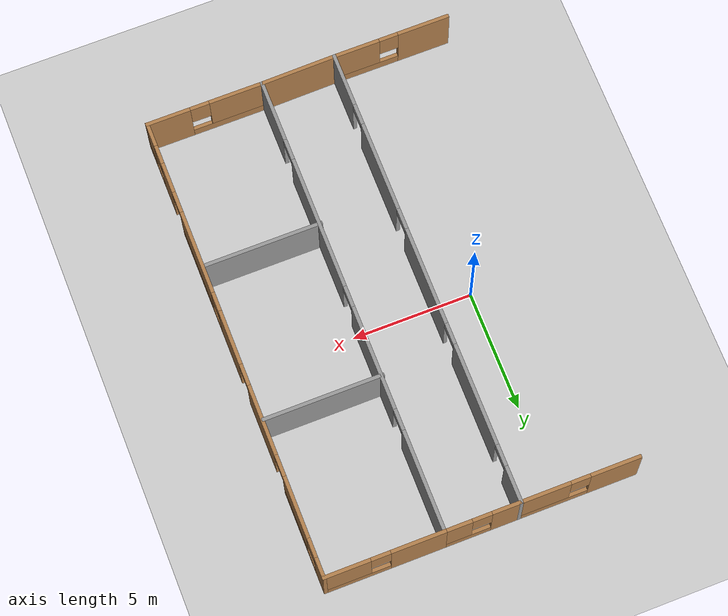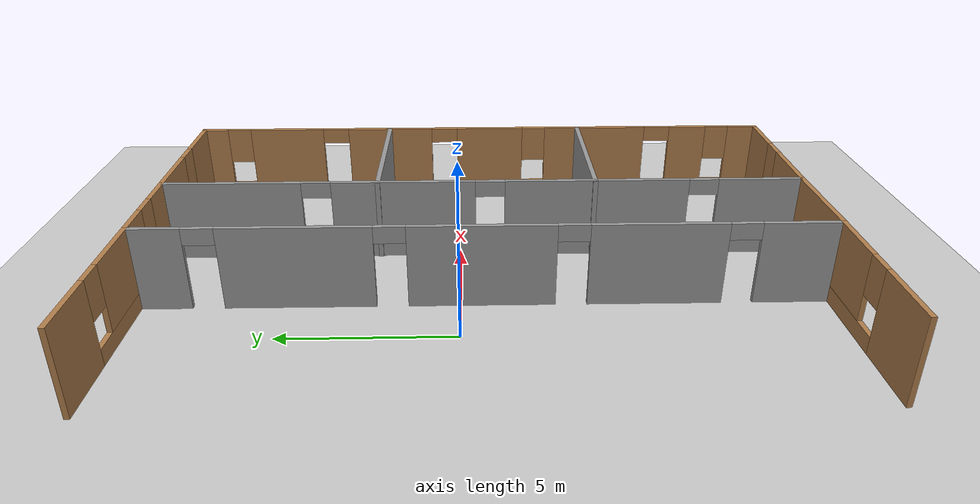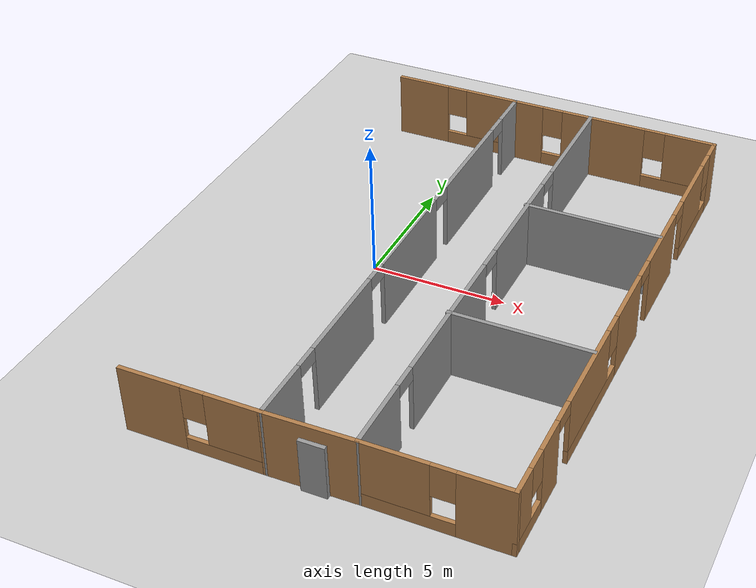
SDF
<sdf version="1.7">
 <world name="hospital_world">
  <model name="ground_plane">
   <static>1</static>
   <link name="link">
    <collision name="collision">
     <geometry><plane><normal>0 0 1</normal><size>100 100</size></plane></geometry>
     <surface><friction><ode><mu>100</mu><mu2>50</mu2></ode></friction></surface>
    </collision>
    <visual name="visual">
     <cast_shadows>0</cast_shadows>
     <geometry><plane><normal>0 0 1</normal><size>100 100</size></plane></geometry>
     <material>
      <script><uri>file://media/materials/scripts/gazebo.material</uri><name>Gazebo/Grey</name></script>
     </material>
    </visual>
   </link>
  </model>
  <model name="hospital_floor_v2">
   <pose>-0.734547 -0.759195 0 0 -0 0</pose>
   <link name="Door_19">
    <collision name="Door_19_Collision">
     <geometry><box><size>0.9 0.17 2</size></box></geometry>
     <pose>0 0 1 0 -0 0</pose>
    </collision>
    <visual name="Door_19_Visual">
     <pose>0 0 1 0 -0 0</pose>
     <geometry><box><size>0.9 0.17 2</size></box></geometry>
     <material>
      <script><uri>file://media/materials/scripts/gazebo.material</uri><name>Gazebo/Grey</name></script>
     </material>
    </visual>
    <pose>4.12711 -9.93446 0 0 -0 0</pose>
   </link>
   <link name="Wall_111">
    <pose>7.95 9.8256 0 0 -0 0</pose>
    <visual name="Wall_111_Visual_0">
     <pose>-1.37417 0 1.25 0 -0 0</pose>
     <geometry><box><size>2.25167 0.15 2.5</size></box></geometry>
     <material>
      <script><uri>file://media/materials/scripts/gazebo.material</uri><name>Gazebo/Wood</name></script>
      <ambient>1 1 1 1</ambient>
     </material>
     <meta><layer>0</layer></meta>
    </visual>
    <collision name="Wall_111_Collision_0">
     <geometry><box><size>2.25167 0.15 2.5</size></box></geometry>
     <pose>-1.37417 0 1.25 0 -0 0</pose>
    </collision>
    <visual name="Wall_111_Visual_1">
     <pose>1.12583 0 0.25 0 -0 0</pose>
     <geometry><box><size>2.74833 0.15 0.5</size></box></geometry>
     <material>
      <script><uri>file://media/materials/scripts/gazebo.material</uri><name>Gazebo/Wood</name></script>
      <ambient>1 1 1 1</ambient>
     </material>
     <meta><layer>0</layer></meta>
    </visual>
    <collision name="Wall_111_Collision_1">
     <geometry><box><size>2.74833 0.15 0.5</size></box></geometry>
     <pose>1.12583 0 0.25 0 -0 0</pose>
    </collision>
    <visual name="Wall_111_Visual_2">
     <pose>1.52583 0 1.5 0 -0 0</pose>
     <geometry><box><size>1.94833 0.15 2</size></box></geometry>
     <material>
      <script><uri>file://media/materials/scripts/gazebo.material</uri><name>Gazebo/Wood</name></script>
      <ambient>1 1 1 1</ambient>
     </material>
     <meta><layer>0</layer></meta>
    </visual>
    <collision name="Wall_111_Collision_2">
     <geometry><box><size>1.94833 0.15 2</size></box></geometry>
     <pose>1.52583 0 1.5 0 -0 0</pose>
    </collision>
    <visual name="Wall_111_Visual_3">
     <pose>0.151665 0 1.9 0 -0 0</pose>
     <geometry><box><size>0.8 0.15 1.2</size></box></geometry>
     <material>
      <script><uri>file://media/materials/scripts/gazebo.material</uri><name>Gazebo/Wood</name></script>
      <ambient>1 1 1 1</ambient>
     </material>
     <meta><layer>0</layer></meta>
    </visual>
    <collision name="Wall_111_Collision_3">
     <geometry><box><size>0.8 0.15 1.2</size></box></geometry>
     <pose>0.151665 0 1.9 0 -0 0</pose>
    </collision>
   </link>
   <link name="Wall_112">
    <pose>10.375 0.025599 0 0 -0 -1.5708</pose>
    <visual name="Wall_112_Visual_0">
     <pose>-9.42467 0 1.25 0 -0 0</pose>
     <geometry><box><size>0.900667 0.15 2.5</size></box></geometry>
     <material>
      <script><uri>file://media/materials/scripts/gazebo.material</uri><name>Gazebo/Wood</name></script>
      <ambient>1 1 1 1</ambient>
     </material>
     <meta><layer>0</layer></meta>
    </visual>
    <collision name="Wall_112_Collision_0">
     <geometry><box><size>0.900667 0.15 2.5</size></box></geometry>
     <pose>-9.42467 0 1.25 0 -0 0</pose>
    </collision>
    <visual name="Wall_112_Visual_1">
     <pose>-3.24113 0 1.25 0 -0 0</pose>
     <geometry><box><size>2.95288 0.15 2.5</size></box></geometry>
     <material>
      <script><uri>file://media/materials/scripts/gazebo.material</uri><name>Gazebo/Wood</name></script>
      <ambient>1 1 1 1</ambient>
     </material>
     <meta><layer>0</layer></meta>
    </visual>
    <collision name="Wall_112_Collision_1">
     <geometry><box><size>2.95288 0.15 2.5</size></box></geometry>
     <pose>-3.24113 0 1.25 0 -0 0</pose>
    </collision>
    <visual name="Wall_112_Visual_2">
     <pose>0.29202 0 1.25 0 -0 0</pose>
     <geometry><box><size>2.31342 0.15 2.5</size></box></geometry>
     <material>
      <script><uri>file://media/materials/scripts/gazebo.material</uri><name>Gazebo/Wood</name></script>
      <ambient>1 1 1 1</ambient>
     </material>
     <meta><layer>0</layer></meta>
    </visual>
    <collision name="Wall_112_Collision_2">
     <geometry><box><size>2.31342 0.15 2.5</size></box></geometry>
     <pose>0.29202 0 1.25 0 -0 0</pose>
    </collision>
    <visual name="Wall_112_Visual_3">
     <pose>7.36916 0 1.25 0 -0 0</pose>
     <geometry><box><size>1.2995 0.15 2.5</size></box></geometry>
     <material>
      <script><uri>file://media/materials/scripts/gazebo.material</uri><name>Gazebo/Wood</name></script>
      <ambient>1 1 1 1</ambient>
     </material>
     <meta><layer>0</layer></meta>
    </visual>
    <collision name="Wall_112_Collision_3">
     <geometry><box><size>1.2995 0.15 2.5</size></box></geometry>
     <pose>7.36916 0 1.25 0 -0 0</pose>
    </collision>
    <visual name="Wall_112_Visual_4">
     <pose>-7.29595 0 0.25 0 -0 0</pose>
     <geometry><box><size>3.35676 0.15 0.5</size></box></geometry>
     <material>
      <script><uri>file://media/materials/scripts/gazebo.material</uri><name>Gazebo/Wood</name></script>
      <ambient>1 1 1 1</ambient>
     </material>
     <meta><layer>0</layer></meta>
    </visual>
    <collision name="Wall_112_Collision_4">
     <geometry><box><size>3.35676 0.15 0.5</size></box></geometry>
     <pose>-7.29595 0 0.25 0 -0 0</pose>
    </collision>
    <visual name="Wall_112_Visual_5">
     <pose>3.63407 0 0.25 0 -0 0</pose>
     <geometry><box><size>4.37068 0.15 0.5</size></box></geometry>
     <material>
      <script><uri>file://media/materials/scripts/gazebo.material</uri><name>Gazebo/Wood</name></script>
      <ambient>1 1 1 1</ambient>
     </material>
     <meta><layer>0</layer></meta>
    </visual>
    <collision name="Wall_112_Collision_5">
     <geometry><box><size>4.37068 0.15 0.5</size></box></geometry>
     <pose>3.63407 0 0.25 0 -0 0</pose>
    </collision>
    <visual name="Wall_112_Visual_6">
     <pose>8.94696 0 0.25 0 -0 0</pose>
     <geometry><box><size>1.85609 0.15 0.5</size></box></geometry>
     <material>
      <script><uri>file://media/materials/scripts/gazebo.material</uri><name>Gazebo/Wood</name></script>
      <ambient>1 1 1 1</ambient>
     </material>
     <meta><layer>0</layer></meta>
    </visual>
    <collision name="Wall_112_Collision_6">
     <geometry><box><size>1.85609 0.15 0.5</size></box></geometry>
     <pose>8.94696 0 0.25 0 -0 0</pose>
    </collision>
    <visual name="Wall_112_Visual_7">
     <pose>-6.89595 0 1.5 0 -0 0</pose>
     <geometry><box><size>2.55676 0.15 2</size></box></geometry>
     <material>
      <script><uri>file://media/materials/scripts/gazebo.material</uri><name>Gazebo/Wood</name></script>
      <ambient>1 1 1 1</ambient>
     </material>
     <meta><layer>0</layer></meta>
    </visual>
    <collision name="Wall_112_Collision_7">
     <geometry><box><size>2.55676 0.15 2</size></box></geometry>
     <pose>-6.89595 0 1.5 0 -0 0</pose>
    </collision>
    <visual name="Wall_112_Visual_8">
     <pose>-6.89595 0 1.5 0 -0 0</pose>
     <geometry><box><size>2.55676 0.15 2</size></box></geometry>
     <material>
      <script><uri>file://media/materials/scripts/gazebo.material</uri><name>Gazebo/Wood</name></script>
      <ambient>1 1 1 1</ambient>
     </material>
     <meta><layer>0</layer></meta>
    </visual>
    <collision name="Wall_112_Collision_8">
     <geometry><box><size>2.55676 0.15 2</size></box></geometry>
     <pose>-6.89595 0 1.5 0 -0 0</pose>
    </collision>
    <visual name="Wall_112_Visual_9">
     <pose>4.03407 0 1.5 0 -0 0</pose>
     <geometry><box><size>3.57068 0.15 2</size></box></geometry>
     <material>
      <script><uri>file://media/materials/scripts/gazebo.material</uri><name>Gazebo/Wood</name></script>
      <ambient>1 1 1 1</ambient>
     </material>
     <meta><layer>0</layer></meta>
    </visual>
    <collision name="Wall_112_Collision_9">
     <geometry><box><size>3.57068 0.15 2</size></box></geometry>
     <pose>4.03407 0 1.5 0 -0 0</pose>
    </collision>
    <visual name="Wall_112_Visual_10">
     <pose>4.03407 0 1.5 0 -0 0</pose>
     <geometry><box><size>3.57068 0.15 2</size></box></geometry>
     <material>
      <script><uri>file://media/materials/scripts/gazebo.material</uri><name>Gazebo/Wood</name></script>
      <ambient>1 1 1 1</ambient>
     </material>
     <meta><layer>0</layer></meta>
    </visual>
    <collision name="Wall_112_Collision_10">
     <geometry><box><size>3.57068 0.15 2</size></box></geometry>
     <pose>4.03407 0 1.5 0 -0 0</pose>
    </collision>
    <visual name="Wall_112_Visual_11">
     <pose>9.34695 0 1.5 0 -0 0</pose>
     <geometry><box><size>1.05609 0.15 2</size></box></geometry>
     <material>
      <script><uri>file://media/materials/scripts/gazebo.material</uri><name>Gazebo/Wood</name></script>
      <ambient>1 1 1 1</ambient>
     </material>
     <meta><layer>0</layer></meta>
    </visual>
    <collision name="Wall_112_Collision_11">
     <geometry><box><size>1.05609 0.15 2</size></box></geometry>
     <pose>9.34695 0 1.5 0 -0 0</pose>
    </collision>
    <visual name="Wall_112_Visual_12">
     <pose>-8.57433 0 1.9 0 -0 0</pose>
     <geometry><box><size>0.8 0.15 1.2</size></box></geometry>
     <material>
      <script><uri>file://media/materials/scripts/gazebo.material</uri><name>Gazebo/Wood</name></script>
      <ambient>1 1 1 1</ambient>
     </material>
     <meta><layer>0</layer></meta>
    </visual>
    <collision name="Wall_112_Collision_12">
     <geometry><box><size>0.8 0.15 1.2</size></box></geometry>
     <pose>-8.57433 0 1.9 0 -0 0</pose>
    </collision>
    <visual name="Wall_112_Visual_13">
     <pose>1.84873 0 1.9 0 -0 0</pose>
     <geometry><box><size>0.8 0.15 1.2</size></box></geometry>
     <material>
      <script><uri>file://media/materials/scripts/gazebo.material</uri><name>Gazebo/Wood</name></script>
      <ambient>1 1 1 1</ambient>
     </material>
     <meta><layer>0</layer></meta>
    </visual>
    <collision name="Wall_112_Collision_13">
     <geometry><box><size>0.8 0.15 1.2</size></box></geometry>
     <pose>1.84873 0 1.9 0 -0 0</pose>
    </collision>
    <visual name="Wall_112_Visual_14">
     <pose>8.41891 0 1.9 0 -0 0</pose>
     <geometry><box><size>0.8 0.15 1.2</size></box></geometry>
     <material>
      <script><uri>file://media/materials/scripts/gazebo.material</uri><name>Gazebo/Wood</name></script>
      <ambient>1 1 1 1</ambient>
     </material>
     <meta><layer>0</layer></meta>
    </visual>
    <collision name="Wall_112_Collision_14">
     <geometry><box><size>0.8 0.15 1.2</size></box></geometry>
     <pose>8.41891 0 1.9 0 -0 0</pose>
    </collision>
    <visual name="Wall_112_Visual_15">
     <pose>-1.31469 0 2.25 0 -0 0</pose>
     <geometry><box><size>0.9 0.15 0.5</size></box></geometry>
     <material>
      <script><uri>file://media/materials/scripts/gazebo.material</uri><name>Gazebo/Wood</name></script>
      <ambient>1 1 1 1</ambient>
     </material>
     <meta><layer>0</layer></meta>
    </visual>
    <collision name="Wall_112_Collision_15">
     <geometry><box><size>0.9 0.15 0.5</size></box></geometry>
     <pose>-1.31469 0 2.25 0 -0 0</pose>
    </collision>
    <visual name="Wall_112_Visual_16">
     <pose>-5.16757 0 2.25 0 -0 0</pose>
     <geometry><box><size>0.9 0.15 0.5</size></box></geometry>
     <material>
      <script><uri>file://media/materials/scripts/gazebo.material</uri><name>Gazebo/Wood</name></script>
      <ambient>1 1 1 1</ambient>
     </material>
     <meta><layer>0</layer></meta>
    </visual>
    <collision name="Wall_112_Collision_16">
     <geometry><box><size>0.9 0.15 0.5</size></box></geometry>
     <pose>-5.16757 0 2.25 0 -0 0</pose>
    </collision>
    <visual name="Wall_112_Visual_17">
     <pose>-5.16757 0 2.25 0 -0 0</pose>
     <geometry><box><size>0.9 0.15 0.5</size></box></geometry>
     <material>
      <script><uri>file://media/materials/scripts/gazebo.material</uri><name>Gazebo/Wood</name></script>
      <ambient>1 1 1 1</ambient>
     </material>
     <meta><layer>0</layer></meta>
    </visual>
    <collision name="Wall_112_Collision_17">
     <geometry><box><size>0.9 0.15 0.5</size></box></geometry>
     <pose>-5.16757 0 2.25 0 -0 0</pose>
    </collision>
    <visual name="Wall_112_Visual_18">
     <pose>6.26941 0 2.25 0 -0 0</pose>
     <geometry><box><size>0.9 0.15 0.5</size></box></geometry>
     <material>
      <script><uri>file://media/materials/scripts/gazebo.material</uri><name>Gazebo/Wood</name></script>
      <ambient>1 1 1 1</ambient>
     </material>
     <meta><layer>0</layer></meta>
    </visual>
    <collision name="Wall_112_Collision_18">
     <geometry><box><size>0.9 0.15 0.5</size></box></geometry>
     <pose>6.26941 0 2.25 0 -0 0</pose>
    </collision>
    <visual name="Wall_112_Visual_19">
     <pose>6.26941 0 2.25 0 -0 0</pose>
     <geometry><box><size>0.9 0.15 0.5</size></box></geometry>
     <material>
      <script><uri>file://media/materials/scripts/gazebo.material</uri><name>Gazebo/Wood</name></script>
      <ambient>1 1 1 1</ambient>
     </material>
     <meta><layer>0</layer></meta>
    </visual>
    <collision name="Wall_112_Collision_19">
     <geometry><box><size>0.9 0.15 0.5</size></box></geometry>
     <pose>6.26941 0 2.25 0 -0 0</pose>
    </collision>
   </link>
   <link name="Wall_113">
    <pose>7.95 -9.7744 0 0 -0 3.14159</pose>
    <visual name="Wall_113_Visual_0">
     <pose>-1.56639 0 1.25 0 -0 0</pose>
     <geometry><box><size>1.86722 0.15 2.5</size></box></geometry>
     <material>
      <script><uri>file://media/materials/scripts/gazebo.material</uri><name>Gazebo/Wood</name></script>
      <ambient>1 1 1 1</ambient>
     </material>
     <meta><layer>0</layer></meta>
    </visual>
    <collision name="Wall_113_Collision_0">
     <geometry><box><size>1.86722 0.15 2.5</size></box></geometry>
     <pose>-1.56639 0 1.25 0 -0 0</pose>
    </collision>
    <visual name="Wall_113_Visual_1">
     <pose>0.933611 0 0.25 0 -0 0</pose>
     <geometry><box><size>3.13278 0.15 0.5</size></box></geometry>
     <material>
      <script><uri>file://media/materials/scripts/gazebo.material</uri><name>Gazebo/Wood</name></script>
      <ambient>1 1 1 1</ambient>
     </material>
     <meta><layer>0</layer></meta>
    </visual>
    <collision name="Wall_113_Collision_1">
     <geometry><box><size>3.13278 0.15 0.5</size></box></geometry>
     <pose>0.933611 0 0.25 0 -0 0</pose>
    </collision>
    <visual name="Wall_113_Visual_2">
     <pose>1.33361 0 1.5 0 -0 0</pose>
     <geometry><box><size>2.33278 0.15 2</size></box></geometry>
     <material>
      <script><uri>file://media/materials/scripts/gazebo.material</uri><name>Gazebo/Wood</name></script>
      <ambient>1 1 1 1</ambient>
     </material>
     <meta><layer>0</layer></meta>
    </visual>
    <collision name="Wall_113_Collision_2">
     <geometry><box><size>2.33278 0.15 2</size></box></geometry>
     <pose>1.33361 0 1.5 0 -0 0</pose>
    </collision>
    <visual name="Wall_113_Visual_3">
     <pose>-0.232779 0 1.9 0 -0 0</pose>
     <geometry><box><size>0.8 0.15 1.2</size></box></geometry>
     <material>
      <script><uri>file://media/materials/scripts/gazebo.material</uri><name>Gazebo/Wood</name></script>
      <ambient>1 1 1 1</ambient>
     </material>
     <meta><layer>0</layer></meta>
    </visual>
    <collision name="Wall_113_Collision_3">
     <geometry><box><size>0.8 0.15 1.2</size></box></geometry>
     <pose>-0.232779 0 1.9 0 -0 0</pose>
    </collision>
   </link>
   <link name="Wall_123">
    <collision name="Wall_123_Collision">
     <geometry><box><size>5 0.15 2.5</size></box></geometry>
     <pose>0 0 1.25 0 -0 0</pose>
    </collision>
    <visual name="Wall_123_Visual">
     <pose>0 0 1.25 0 -0 0</pose>
     <geometry><box><size>5 0.15 2.5</size></box></geometry>
     <material>
      <script><uri>file://media/materials/scripts/gazebo.material</uri><name>Gazebo/Grey</name></script>
      <ambient>1 1 1 1</ambient>
     </material>
     <meta><layer>0</layer></meta>
    </visual>
    <pose>7.90133 3.27089 0 0 -0 0</pose>
   </link>
   <link name="Wall_125">
    <collision name="Wall_125_Collision">
     <geometry><box><size>5 0.15 2.5</size></box></geometry>
     <pose>0 0 1.25 0 -0 0</pose>
    </collision>
    <visual name="Wall_125_Visual">
     <pose>0 0 1.25 0 -0 0</pose>
     <geometry><box><size>5 0.15 2.5</size></box></geometry>
     <material>
      <script><uri>file://media/materials/scripts/gazebo.material</uri><name>Gazebo/Grey</name></script>
      <ambient>1 1 1 1</ambient>
     </material>
     <meta><layer>0</layer></meta>
    </visual>
    <pose>7.90133 -3.38 0 0 -0 0</pose>
   </link>
   <link name="Wall_51">
    <pose>0 9.8256 0 0 -0 0</pose>
    <visual name="Wall_51_Visual_0">
     <pose>-1.45483 0 1.25 0 -0 0</pose>
     <geometry><box><size>2.09033 0.15 2.5</size></box></geometry>
     <material>
      <script><uri>file://media/materials/scripts/gazebo.material</uri><name>Gazebo/Wood</name></script>
      <ambient>1 1 1 1</ambient>
     </material>
     <meta><layer>0</layer></meta>
    </visual>
    <collision name="Wall_51_Collision_0">
     <geometry><box><size>2.09033 0.15 2.5</size></box></geometry>
     <pose>-1.45483 0 1.25 0 -0 0</pose>
    </collision>
    <visual name="Wall_51_Visual_1">
     <pose>1.04517 0 0.25 0 -0 0</pose>
     <geometry><box><size>2.90967 0.15 0.5</size></box></geometry>
     <material>
      <script><uri>file://media/materials/scripts/gazebo.material</uri><name>Gazebo/Wood</name></script>
      <ambient>1 1 1 1</ambient>
     </material>
     <meta><layer>0</layer></meta>
    </visual>
    <collision name="Wall_51_Collision_1">
     <geometry><box><size>2.90967 0.15 0.5</size></box></geometry>
     <pose>1.04517 0 0.25 0 -0 0</pose>
    </collision>
    <visual name="Wall_51_Visual_2">
     <pose>1.44517 0 1.5 0 -0 0</pose>
     <geometry><box><size>2.10967 0.15 2</size></box></geometry>
     <material>
      <script><uri>file://media/materials/scripts/gazebo.material</uri><name>Gazebo/Wood</name></script>
      <ambient>1 1 1 1</ambient>
     </material>
     <meta><layer>0</layer></meta>
    </visual>
    <collision name="Wall_51_Collision_2">
     <geometry><box><size>2.10967 0.15 2</size></box></geometry>
     <pose>1.44517 0 1.5 0 -0 0</pose>
    </collision>
    <visual name="Wall_51_Visual_3">
     <pose>-0.009668 0 1.9 0 -0 0</pose>
     <geometry><box><size>0.8 0.15 1.2</size></box></geometry>
     <material>
      <script><uri>file://media/materials/scripts/gazebo.material</uri><name>Gazebo/Wood</name></script>
      <ambient>1 1 1 1</ambient>
     </material>
     <meta><layer>0</layer></meta>
    </visual>
    <collision name="Wall_51_Collision_3">
     <geometry><box><size>0.8 0.15 1.2</size></box></geometry>
     <pose>-0.009668 0 1.9 0 -0 0</pose>
    </collision>
   </link>
   <link name="Wall_60">
    <pose>0 -9.8244 0 0 -0 0</pose>
    <visual name="Wall_60_Visual_0">
     <pose>-1.394 0 1.25 0 -0 0</pose>
     <geometry><box><size>2.212 0.15 2.5</size></box></geometry>
     <material>
      <script><uri>file://media/materials/scripts/gazebo.material</uri><name>Gazebo/Wood</name></script>
      <ambient>1 1 1 1</ambient>
     </material>
     <meta><layer>0</layer></meta>
    </visual>
    <collision name="Wall_60_Collision_0">
     <geometry><box><size>2.212 0.15 2.5</size></box></geometry>
     <pose>-1.394 0 1.25 0 -0 0</pose>
    </collision>
    <visual name="Wall_60_Visual_1">
     <pose>1.106 0 0.25 0 -0 0</pose>
     <geometry><box><size>2.788 0.15 0.5</size></box></geometry>
     <material>
      <script><uri>file://media/materials/scripts/gazebo.material</uri><name>Gazebo/Wood</name></script>
      <ambient>1 1 1 1</ambient>
     </material>
     <meta><layer>0</layer></meta>
    </visual>
    <collision name="Wall_60_Collision_1">
     <geometry><box><size>2.788 0.15 0.5</size></box></geometry>
     <pose>1.106 0 0.25 0 -0 0</pose>
    </collision>
    <visual name="Wall_60_Visual_2">
     <pose>1.506 0 1.5 0 -0 0</pose>
     <geometry><box><size>1.988 0.15 2</size></box></geometry>
     <material>
      <script><uri>file://media/materials/scripts/gazebo.material</uri><name>Gazebo/Wood</name></script>
      <ambient>1 1 1 1</ambient>
     </material>
     <meta><layer>0</layer></meta>
    </visual>
    <collision name="Wall_60_Collision_2">
     <geometry><box><size>1.988 0.15 2</size></box></geometry>
     <pose>1.506 0 1.5 0 -0 0</pose>
    </collision>
    <visual name="Wall_60_Visual_3">
     <pose>0.112002 0 1.9 0 -0 0</pose>
     <geometry><box><size>0.8 0.15 1.2</size></box></geometry>
     <material>
      <script><uri>file://media/materials/scripts/gazebo.material</uri><name>Gazebo/Wood</name></script>
      <ambient>1 1 1 1</ambient>
     </material>
     <meta><layer>0</layer></meta>
    </visual>
    <collision name="Wall_60_Collision_3">
     <geometry><box><size>0.8 0.15 1.2</size></box></geometry>
     <pose>0.112002 0 1.9 0 -0 0</pose>
    </collision>
   </link>
   <link name="Wall_62">
    <pose>2.425 0.000599 0 0 -0 1.5708</pose>
    <visual name="Wall_62_Visual_0">
     <pose>-8.74333 0 1.25 0 -0 0</pose>
     <geometry><box><size>2.31335 0.15 2.5</size></box></geometry>
     <material>
      <script><uri>file://media/materials/scripts/gazebo.material</uri><name>Gazebo/Grey</name></script>
      <ambient>1 1 1 1</ambient>
     </material>
     <meta><layer>0</layer></meta>
    </visual>
    <collision name="Wall_62_Collision_0">
     <geometry><box><size>2.31335 0.15 2.5</size></box></geometry>
     <pose>-8.74333 0 1.25 0 -0 0</pose>
    </collision>
    <visual name="Wall_62_Visual_1">
     <pose>-4.76409 0 1.25 0 -0 0</pose>
     <geometry><box><size>3.84513 0.15 2.5</size></box></geometry>
     <material>
      <script><uri>file://media/materials/scripts/gazebo.material</uri><name>Gazebo/Grey</name></script>
      <ambient>1 1 1 1</ambient>
     </material>
     <meta><layer>0</layer></meta>
    </visual>
    <collision name="Wall_62_Collision_1">
     <geometry><box><size>3.84513 0.15 2.5</size></box></geometry>
     <pose>-4.76409 0 1.25 0 -0 0</pose>
    </collision>
    <visual name="Wall_62_Visual_2">
     <pose>0.143268 0 1.25 0 -0 0</pose>
     <geometry><box><size>4.16958 0.15 2.5</size></box></geometry>
     <material>
      <script><uri>file://media/materials/scripts/gazebo.material</uri><name>Gazebo/Grey</name></script>
      <ambient>1 1 1 1</ambient>
     </material>
     <meta><layer>0</layer></meta>
    </visual>
    <collision name="Wall_62_Collision_2">
     <geometry><box><size>4.16958 0.15 2.5</size></box></geometry>
     <pose>0.143268 0 1.25 0 -0 0</pose>
    </collision>
    <visual name="Wall_62_Visual_3">
     <pose>5.27369 0 1.25 0 -0 0</pose>
     <geometry><box><size>4.29125 0.15 2.5</size></box></geometry>
     <material>
      <script><uri>file://media/materials/scripts/gazebo.material</uri><name>Gazebo/Grey</name></script>
      <ambient>1 1 1 1</ambient>
     </material>
     <meta><layer>0</layer></meta>
    </visual>
    <collision name="Wall_62_Collision_3">
     <geometry><box><size>4.29125 0.15 2.5</size></box></geometry>
     <pose>5.27369 0 1.25 0 -0 0</pose>
    </collision>
    <visual name="Wall_62_Visual_4">
     <pose>9.10966 0 1.25 0 -0 0</pose>
     <geometry><box><size>1.58069 0.15 2.5</size></box></geometry>
     <material>
      <script><uri>file://media/materials/scripts/gazebo.material</uri><name>Gazebo/Grey</name></script>
      <ambient>1 1 1 1</ambient>
     </material>
     <meta><layer>0</layer></meta>
    </visual>
    <collision name="Wall_62_Collision_4">
     <geometry><box><size>1.58069 0.15 2.5</size></box></geometry>
     <pose>9.10966 0 1.25 0 -0 0</pose>
    </collision>
    <visual name="Wall_62_Visual_5">
     <pose>-7.13665 0 2.25 0 -0 0</pose>
     <geometry><box><size>0.9 0.15 0.5</size></box></geometry>
     <material>
      <script><uri>file://media/materials/scripts/gazebo.material</uri><name>Gazebo/Grey</name></script>
      <ambient>1 1 1 1</ambient>
     </material>
     <meta><layer>0</layer></meta>
    </visual>
    <collision name="Wall_62_Collision_5">
     <geometry><box><size>0.9 0.15 0.5</size></box></geometry>
     <pose>-7.13665 0 2.25 0 -0 0</pose>
    </collision>
    <visual name="Wall_62_Visual_6">
     <pose>-2.39152 0 2.25 0 -0 0</pose>
     <geometry><box><size>0.9 0.15 0.5</size></box></geometry>
     <material>
      <script><uri>file://media/materials/scripts/gazebo.material</uri><name>Gazebo/Grey</name></script>
      <ambient>1 1 1 1</ambient>
     </material>
     <meta><layer>0</layer></meta>
    </visual>
    <collision name="Wall_62_Collision_6">
     <geometry><box><size>0.9 0.15 0.5</size></box></geometry>
     <pose>-2.39152 0 2.25 0 -0 0</pose>
    </collision>
    <visual name="Wall_62_Visual_7">
     <pose>2.67806 0 2.25 0 -0 0</pose>
     <geometry><box><size>0.9 0.15 0.5</size></box></geometry>
     <material>
      <script><uri>file://media/materials/scripts/gazebo.material</uri><name>Gazebo/Grey</name></script>
      <ambient>1 1 1 1</ambient>
     </material>
     <meta><layer>0</layer></meta>
    </visual>
    <collision name="Wall_62_Collision_7">
     <geometry><box><size>0.9 0.15 0.5</size></box></geometry>
     <pose>2.67806 0 2.25 0 -0 0</pose>
    </collision>
    <visual name="Wall_62_Visual_8">
     <pose>7.86931 0 2.25 0 -0 0</pose>
     <geometry><box><size>0.9 0.15 0.5</size></box></geometry>
     <material>
      <script><uri>file://media/materials/scripts/gazebo.material</uri><name>Gazebo/Grey</name></script>
      <ambient>1 1 1 1</ambient>
     </material>
     <meta><layer>0</layer></meta>
    </visual>
    <collision name="Wall_62_Collision_8">
     <geometry><box><size>0.9 0.15 0.5</size></box></geometry>
     <pose>7.86931 0 2.25 0 -0 0</pose>
    </collision>
   </link>
   <link name="Wall_63">
    <pose>3.975 9.8256 0 0 -0 0</pose>
    <visual name="Wall_63_Visual_0">
     <pose>-0.997279 0 1.25 0 -0 0</pose>
     <geometry><box><size>1.25544 0.15 2.5</size></box></geometry>
     <material>
      <script><uri>file://media/materials/scripts/gazebo.material</uri><name>Gazebo/Wood</name></script>
      <ambient>1 1 1 1</ambient>
     </material>
     <meta><layer>0</layer></meta>
    </visual>
    <collision name="Wall_63_Collision_0">
     <geometry><box><size>1.25544 0.15 2.5</size></box></geometry>
     <pose>-0.997279 0 1.25 0 -0 0</pose>
    </collision>
    <visual name="Wall_63_Visual_1">
     <pose>0.627721 0 0.25 0 -0 0</pose>
     <geometry><box><size>1.99456 0.15 0.5</size></box></geometry>
     <material>
      <script><uri>file://media/materials/scripts/gazebo.material</uri><name>Gazebo/Wood</name></script>
      <ambient>1 1 1 1</ambient>
     </material>
     <meta><layer>0</layer></meta>
    </visual>
    <collision name="Wall_63_Collision_1">
     <geometry><box><size>1.99456 0.15 0.5</size></box></geometry>
     <pose>0.627721 0 0.25 0 -0 0</pose>
    </collision>
    <visual name="Wall_63_Visual_2">
     <pose>1.02772 0 1.5 0 -0 0</pose>
     <geometry><box><size>1.19456 0.15 2</size></box></geometry>
     <material>
      <script><uri>file://media/materials/scripts/gazebo.material</uri><name>Gazebo/Wood</name></script>
      <ambient>1 1 1 1</ambient>
     </material>
     <meta><layer>0</layer></meta>
    </visual>
    <collision name="Wall_63_Collision_2">
     <geometry><box><size>1.19456 0.15 2</size></box></geometry>
     <pose>1.02772 0 1.5 0 -0 0</pose>
    </collision>
    <visual name="Wall_63_Visual_3">
     <pose>0.030442 0 1.9 0 -0 0</pose>
     <geometry><box><size>0.8 0.15 1.2</size></box></geometry>
     <material>
      <script><uri>file://media/materials/scripts/gazebo.material</uri><name>Gazebo/Wood</name></script>
      <ambient>1 1 1 1</ambient>
     </material>
     <meta><layer>0</layer></meta>
    </visual>
    <collision name="Wall_63_Collision_3">
     <geometry><box><size>0.8 0.15 1.2</size></box></geometry>
     <pose>0.030442 0 1.9 0 -0 0</pose>
    </collision>
   </link>
   <link name="Wall_64">
    <pose>5.525 0.025599 0 0 -0 -1.5708</pose>
    <visual name="Wall_64_Visual_0">
     <pose>-7.72601 0 1.25 0 -0 0</pose>
     <geometry><box><size>4.29798 0.15 2.5</size></box></geometry>
     <material>
      <script><uri>file://media/materials/scripts/gazebo.material</uri><name>Gazebo/Grey</name></script>
      <ambient>1 1 1 1</ambient>
     </material>
     <meta><layer>0</layer></meta>
    </visual>
    <collision name="Wall_64_Collision_0">
     <geometry><box><size>4.29798 0.15 2.5</size></box></geometry>
     <pose>-7.72601 0 1.25 0 -0 0</pose>
    </collision>
    <visual name="Wall_64_Visual_1">
     <pose>-2.47056 0 1.25 0 -0 0</pose>
     <geometry><box><size>4.41292 0.15 2.5</size></box></geometry>
     <material>
      <script><uri>file://media/materials/scripts/gazebo.material</uri><name>Gazebo/Grey</name></script>
      <ambient>1 1 1 1</ambient>
     </material>
     <meta><layer>0</layer></meta>
    </visual>
    <collision name="Wall_64_Collision_1">
     <geometry><box><size>4.41292 0.15 2.5</size></box></geometry>
     <pose>-2.47056 0 1.25 0 -0 0</pose>
    </collision>
    <visual name="Wall_64_Visual_2">
     <pose>3.471 0 1.25 0 -0 0</pose>
     <geometry><box><size>5.67018 0.15 2.5</size></box></geometry>
     <material>
      <script><uri>file://media/materials/scripts/gazebo.material</uri><name>Gazebo/Grey</name></script>
      <ambient>1 1 1 1</ambient>
     </material>
     <meta><layer>0</layer></meta>
    </visual>
    <collision name="Wall_64_Collision_2">
     <geometry><box><size>5.67018 0.15 2.5</size></box></geometry>
     <pose>3.471 0 1.25 0 -0 0</pose>
    </collision>
    <visual name="Wall_64_Visual_3">
     <pose>8.54054 0 1.25 0 -0 0</pose>
     <geometry><box><size>2.66891 0.15 2.5</size></box></geometry>
     <material>
      <script><uri>file://media/materials/scripts/gazebo.material</uri><name>Gazebo/Grey</name></script>
      <ambient>1 1 1 1</ambient>
     </material>
     <meta><layer>0</layer></meta>
    </visual>
    <collision name="Wall_64_Collision_3">
     <geometry><box><size>2.66891 0.15 2.5</size></box></geometry>
     <pose>8.54054 0 1.25 0 -0 0</pose>
    </collision>
    <visual name="Wall_64_Visual_4">
     <pose>-5.12702 0 2.25 0 -0 0</pose>
     <geometry><box><size>0.9 0.15 0.5</size></box></geometry>
     <material>
      <script><uri>file://media/materials/scripts/gazebo.material</uri><name>Gazebo/Grey</name></script>
      <ambient>1 1 1 1</ambient>
     </material>
     <meta><layer>0</layer></meta>
    </visual>
    <collision name="Wall_64_Collision_4">
     <geometry><box><size>0.9 0.15 0.5</size></box></geometry>
     <pose>-5.12702 0 2.25 0 -0 0</pose>
    </collision>
    <visual name="Wall_64_Visual_5">
     <pose>0.185907 0 2.25 0 -0 0</pose>
     <geometry><box><size>0.9 0.15 0.5</size></box></geometry>
     <material>
      <script><uri>file://media/materials/scripts/gazebo.material</uri><name>Gazebo/Grey</name></script>
      <ambient>1 1 1 1</ambient>
     </material>
     <meta><layer>0</layer></meta>
    </visual>
    <collision name="Wall_64_Collision_5">
     <geometry><box><size>0.9 0.15 0.5</size></box></geometry>
     <pose>0.185907 0 2.25 0 -0 0</pose>
    </collision>
    <visual name="Wall_64_Visual_6">
     <pose>6.75609 0 2.25 0 -0 0</pose>
     <geometry><box><size>0.9 0.15 0.5</size></box></geometry>
     <material>
      <script><uri>file://media/materials/scripts/gazebo.material</uri><name>Gazebo/Grey</name></script>
      <ambient>1 1 1 1</ambient>
     </material>
     <meta><layer>0</layer></meta>
    </visual>
    <collision name="Wall_64_Collision_6">
     <geometry><box><size>0.9 0.15 0.5</size></box></geometry>
     <pose>6.75609 0 2.25 0 -0 0</pose>
    </collision>
   </link>
   <link name="Wall_65">
    <collision name="Wall_65_Collision">
     <geometry><box><size>3.2504 0.15 2.5</size></box></geometry>
     <pose>0 0 1.25 0 -0 0</pose>
    </collision>
    <visual name="Wall_65_Visual">
     <pose>0 0 1.25 0 -0 0</pose>
     <geometry><box><size>3.2504 0.15 2.5</size></box></geometry>
     <material>
      <script><uri>file://media/materials/scripts/gazebo.material</uri><name>Gazebo/Wood</name></script>
      <ambient>1 1 1 1</ambient>
     </material>
     <meta><layer>0</layer></meta>
    </visual>
    <pose>3.975 -9.7994 0 0 -0 -3.12547</pose>
   </link>
   <static>1</static>
  </model>
 </world>
</sdf>
